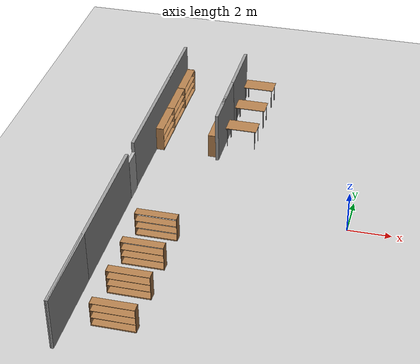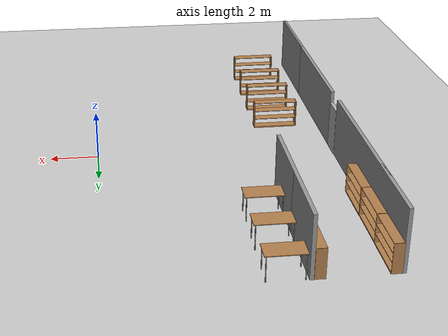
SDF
<sdf version="1.7">
 <world name="default">
  <model name="ground_plane">
   <static>1</static>
   <link name="link">
    <collision name="collision">
     <geometry><plane><normal>0 0 1</normal><size>100 100</size></plane></geometry>
     <surface>
      <contact><collide_bitmask>65535</collide_bitmask></contact>
      <friction><ode><mu>100</mu><mu2>50</mu2></ode></friction>
     </surface>
    </collision>
    <visual name="visual">
     <cast_shadows>0</cast_shadows>
     <geometry><plane><normal>0 0 1</normal><size>100 100</size></plane></geometry>
     <material>
      <script><uri>file://media/materials/scripts/gazebo.material</uri><name>Gazebo/Grey</name></script>
     </material>
    </visual>
   </link>
  </model>
  <model name="wall_10m">
   <pose>-10.0955 -5.01191 0 0 0 -1.57203</pose>
   <link name="Wall_0">
    <collision name="Wall_0_Collision">
     <geometry><box><size>4.16 0.15 2.5</size></box></geometry>
     <pose>0 0 1.25 0 -0 0</pose>
    </collision>
    <visual name="Wall_0_Visual">
     <pose>0 0 1.25 0 -0 0</pose>
     <geometry><box><size>4.16 0.15 2.5</size></box></geometry>
     <material>
      <script><uri>file://media/materials/scripts/gazebo.material</uri><name>Gazebo/Grey</name></script>
      <ambient>1 1 1 1</ambient>
     </material>
     <meta><layer>0</layer></meta>
    </visual>
    <pose>2.92 0 0 0 -0 0</pose>
   </link>
   <link name="Wall_1">
    <collision name="Wall_1_Collision">
     <geometry><box><size>10 0.15 2.5</size></box></geometry>
     <pose>0 0 1.25 0 -0 0</pose>
    </collision>
    <visual name="Wall_1_Visual">
     <pose>0 0 1.25 0 -0 0</pose>
     <geometry><box><size>10 0.15 2.5</size></box></geometry>
     <material>
      <script><uri>file://media/materials/scripts/gazebo.material</uri><name>Gazebo/Grey</name></script>
      <ambient>1 1 1 1</ambient>
     </material>
     <meta><layer>0</layer></meta>
    </visual>
    <pose>0 0 0 0 -0 3.14159</pose>
   </link>
   <static>1</static>
  </model>
  <model name="door_1">
   <link name="link_0">
    <visual name="visual">
     <pose>0 0 1 0 -0 0</pose>
     <geometry><box><size>0.9 0.15 2</size></box></geometry>
     <material>
      <script>
       <uri>model://door/materials/scripts</uri>
       <uri>model://door/materials/textures</uri>
       <name>door</name>
      </script>
     </material>
    </visual>
    <collision name="collision">
     <pose>0 0 1 0 -0 0</pose>
     <geometry><box><size>0.9 0.15 2</size></box></geometry>
    </collision>
   </link>
   <static>1</static>
   <pose>-10.0824 0.449021 0 0 -0 1.568</pose>
  </model>
  <model name="wall_9m">
   <pose>-10.0971 5.40979 0 0 -0 1.56823</pose>
   <link name="Wall_0">
    <collision name="Wall_0_Collision">
     <geometry><box><size>3.16 0.15 2.5</size></box></geometry>
     <pose>0 0 1.25 0 -0 0</pose>
    </collision>
    <visual name="Wall_0_Visual">
     <pose>0 0 1.25 0 -0 0</pose>
     <geometry><box><size>3.16 0.15 2.5</size></box></geometry>
     <material>
      <script><uri>file://media/materials/scripts/gazebo.material</uri><name>Gazebo/Grey</name></script>
      <ambient>1 1 1 1</ambient>
     </material>
     <meta><layer>0</layer></meta>
    </visual>
    <pose>2.92 0 0 0 -0 0</pose>
   </link>
   <link name="Wall_1">
    <collision name="Wall_1_Collision">
     <geometry><box><size>9 0.15 2.5</size></box></geometry>
     <pose>0 0 1.25 0 -0 0</pose>
    </collision>
    <visual name="Wall_1_Visual">
     <pose>0 0 1.25 0 -0 0</pose>
     <geometry><box><size>9 0.15 2.5</size></box></geometry>
     <material>
      <script><uri>file://media/materials/scripts/gazebo.material</uri><name>Gazebo/Grey</name></script>
      <ambient>1 1 1 1</ambient>
     </material>
     <meta><layer>0</layer></meta>
    </visual>
    <pose>0 0 0 0 -0 3.14159</pose>
   </link>
   <static>1</static>
  </model>
  <model name="bookshelf_twosided">
   <static>1</static>
   <link name="link">
    <inertial><mass>1</mass></inertial>
    <collision name="left_side">
     <pose>0.95 -0.195 0.6 0 -0 0</pose>
     <geometry><box><size>0.02 0.4 1.2</size></box></geometry>
    </collision>
    <visual name="left_side">
     <pose>0.95 -0.195 0.6 0 -0 0</pose>
     <geometry><box><size>0.02 0.4 1.2</size></box></geometry>
     <material>
      <script><uri>file://media/materials/scripts/gazebo.material</uri><name>Gazebo/Wood</name></script>
     </material>
    </visual>
    <collision name="right_side">
     <pose>-0.95 -0.195 0.6 0 -0 0</pose>
     <geometry><box><size>0.02 0.4 1.2</size></box></geometry>
    </collision>
    <visual name="right_side">
     <pose>-0.95 -0.195 0.6 0 -0 0</pose>
     <geometry><box><size>0.02 0.4 1.2</size></box></geometry>
     <material>
      <script><uri>file://media/materials/scripts/gazebo.material</uri><name>Gazebo/Wood</name></script>
     </material>
    </visual>
    <collision name="bottom">
     <pose>0 -0.195 0.03 0 -0 0</pose>
     <geometry><box><size>1.88 0.4 0.06</size></box></geometry>
    </collision>
    <visual name="bottom">
     <pose>0 -0.195 0.03 0 -0 0</pose>
     <geometry><box><size>1.88 0.4 0.06</size></box></geometry>
     <material>
      <script><uri>file://media/materials/scripts/gazebo.material</uri><name>Gazebo/Wood</name></script>
     </material>
    </visual>
    <collision name="top">
     <pose>0 -0.195 1.19 0 -0 0</pose>
     <geometry><box><size>1.88 0.4 0.02</size></box></geometry>
    </collision>
    <visual name="top">
     <pose>0 -0.195 1.19 0 -0 0</pose>
     <geometry><box><size>1.88 0.4 0.02</size></box></geometry>
     <material>
      <script><uri>file://media/materials/scripts/gazebo.material</uri><name>Gazebo/Wood</name></script>
     </material>
    </visual>
    <collision name="low_shelf">
     <pose>0 -0.195 0.43 0 -0 0</pose>
     <geometry><box><size>1.88 0.4 0.02</size></box></geometry>
    </collision>
    <visual name="low_shelf">
     <pose>0 -0.195 0.43 0 -0 0</pose>
     <geometry><box><size>1.88 0.4 0.02</size></box></geometry>
     <material>
      <script><uri>file://media/materials/scripts/gazebo.material</uri><name>Gazebo/Wood</name></script>
     </material>
    </visual>
    <collision name="high_shelf">
     <pose>0 -0.195 0.8 0 -0 0</pose>
     <geometry><box><size>1.88 0.4 0.02</size></box></geometry>
    </collision>
    <visual name="high_shelf">
     <pose>0 -0.195 0.8 0 -0 0</pose>
     <geometry><box><size>1.88 0.4 0.02</size></box></geometry>
     <material>
      <script><uri>file://media/materials/scripts/gazebo.material</uri><name>Gazebo/Wood</name></script>
     </material>
    </visual>
   </link>
   <pose>-8.08838 -8.03725 0 0 -0 0</pose>
  </model>
  <model name="bookshelf_twosided_2">
   <static>1</static>
   <link name="link">
    <inertial><mass>1</mass></inertial>
    <collision name="left_side">
     <pose>0.95 -0.195 0.6 0 -0 0</pose>
     <geometry><box><size>0.02 0.4 1.2</size></box></geometry>
    </collision>
    <visual name="left_side">
     <pose>0.95 -0.195 0.6 0 -0 0</pose>
     <geometry><box><size>0.02 0.4 1.2</size></box></geometry>
     <material>
      <script><uri>file://media/materials/scripts/gazebo.material</uri><name>Gazebo/Wood</name></script>
     </material>
    </visual>
    <collision name="right_side">
     <pose>-0.95 -0.195 0.6 0 -0 0</pose>
     <geometry><box><size>0.02 0.4 1.2</size></box></geometry>
    </collision>
    <visual name="right_side">
     <pose>-0.95 -0.195 0.6 0 -0 0</pose>
     <geometry><box><size>0.02 0.4 1.2</size></box></geometry>
     <material>
      <script><uri>file://media/materials/scripts/gazebo.material</uri><name>Gazebo/Wood</name></script>
     </material>
    </visual>
    <collision name="bottom">
     <pose>0 -0.195 0.03 0 -0 0</pose>
     <geometry><box><size>1.88 0.4 0.06</size></box></geometry>
    </collision>
    <visual name="bottom">
     <pose>0 -0.195 0.03 0 -0 0</pose>
     <geometry><box><size>1.88 0.4 0.06</size></box></geometry>
     <material>
      <script><uri>file://media/materials/scripts/gazebo.material</uri><name>Gazebo/Wood</name></script>
     </material>
    </visual>
    <collision name="top">
     <pose>0 -0.195 1.19 0 -0 0</pose>
     <geometry><box><size>1.88 0.4 0.02</size></box></geometry>
    </collision>
    <visual name="top">
     <pose>0 -0.195 1.19 0 -0 0</pose>
     <geometry><box><size>1.88 0.4 0.02</size></box></geometry>
     <material>
      <script><uri>file://media/materials/scripts/gazebo.material</uri><name>Gazebo/Wood</name></script>
     </material>
    </visual>
    <collision name="low_shelf">
     <pose>0 -0.195 0.43 0 -0 0</pose>
     <geometry><box><size>1.88 0.4 0.02</size></box></geometry>
    </collision>
    <visual name="low_shelf">
     <pose>0 -0.195 0.43 0 -0 0</pose>
     <geometry><box><size>1.88 0.4 0.02</size></box></geometry>
     <material>
      <script><uri>file://media/materials/scripts/gazebo.material</uri><name>Gazebo/Wood</name></script>
     </material>
    </visual>
    <collision name="high_shelf">
     <pose>0 -0.195 0.8 0 -0 0</pose>
     <geometry><box><size>1.88 0.4 0.02</size></box></geometry>
    </collision>
    <visual name="high_shelf">
     <pose>0 -0.195 0.8 0 -0 0</pose>
     <geometry><box><size>1.88 0.4 0.02</size></box></geometry>
     <material>
      <script><uri>file://media/materials/scripts/gazebo.material</uri><name>Gazebo/Wood</name></script>
     </material>
    </visual>
   </link>
   <pose>-8.0795 -6.02858 0 0 -0 0</pose>
  </model>
  <model name="bookshelf_twosided_5">
   <static>1</static>
   <link name="link">
    <inertial><mass>1</mass></inertial>
    <collision name="left_side">
     <pose>0.95 -0.195 0.6 0 -0 0</pose>
     <geometry><box><size>0.02 0.4 1.2</size></box></geometry>
    </collision>
    <visual name="left_side">
     <pose>0.95 -0.195 0.6 0 -0 0</pose>
     <geometry><box><size>0.02 0.4 1.2</size></box></geometry>
     <material>
      <script><uri>file://media/materials/scripts/gazebo.material</uri><name>Gazebo/Wood</name></script>
     </material>
    </visual>
    <collision name="right_side">
     <pose>-0.95 -0.195 0.6 0 -0 0</pose>
     <geometry><box><size>0.02 0.4 1.2</size></box></geometry>
    </collision>
    <visual name="right_side">
     <pose>-0.95 -0.195 0.6 0 -0 0</pose>
     <geometry><box><size>0.02 0.4 1.2</size></box></geometry>
     <material>
      <script><uri>file://media/materials/scripts/gazebo.material</uri><name>Gazebo/Wood</name></script>
     </material>
    </visual>
    <collision name="bottom">
     <pose>0 -0.195 0.03 0 -0 0</pose>
     <geometry><box><size>1.88 0.4 0.06</size></box></geometry>
    </collision>
    <visual name="bottom">
     <pose>0 -0.195 0.03 0 -0 0</pose>
     <geometry><box><size>1.88 0.4 0.06</size></box></geometry>
     <material>
      <script><uri>file://media/materials/scripts/gazebo.material</uri><name>Gazebo/Wood</name></script>
     </material>
    </visual>
    <collision name="top">
     <pose>0 -0.195 1.19 0 -0 0</pose>
     <geometry><box><size>1.88 0.4 0.02</size></box></geometry>
    </collision>
    <visual name="top">
     <pose>0 -0.195 1.19 0 -0 0</pose>
     <geometry><box><size>1.88 0.4 0.02</size></box></geometry>
     <material>
      <script><uri>file://media/materials/scripts/gazebo.material</uri><name>Gazebo/Wood</name></script>
     </material>
    </visual>
    <collision name="low_shelf">
     <pose>0 -0.195 0.43 0 -0 0</pose>
     <geometry><box><size>1.88 0.4 0.02</size></box></geometry>
    </collision>
    <visual name="low_shelf">
     <pose>0 -0.195 0.43 0 -0 0</pose>
     <geometry><box><size>1.88 0.4 0.02</size></box></geometry>
     <material>
      <script><uri>file://media/materials/scripts/gazebo.material</uri><name>Gazebo/Wood</name></script>
     </material>
    </visual>
    <collision name="high_shelf">
     <pose>0 -0.195 0.8 0 -0 0</pose>
     <geometry><box><size>1.88 0.4 0.02</size></box></geometry>
    </collision>
    <visual name="high_shelf">
     <pose>0 -0.195 0.8 0 -0 0</pose>
     <geometry><box><size>1.88 0.4 0.02</size></box></geometry>
     <material>
      <script><uri>file://media/materials/scripts/gazebo.material</uri><name>Gazebo/Wood</name></script>
     </material>
    </visual>
   </link>
   <pose>-8.08114 -4.10736 0 0 -0 0</pose>
  </model>
  <model name="bookshelf_twosided_8">
   <static>1</static>
   <link name="link">
    <inertial><mass>1</mass></inertial>
    <collision name="left_side">
     <pose>0.95 -0.195 0.6 0 -0 0</pose>
     <geometry><box><size>0.02 0.4 1.2</size></box></geometry>
    </collision>
    <visual name="left_side">
     <pose>0.95 -0.195 0.6 0 -0 0</pose>
     <geometry><box><size>0.02 0.4 1.2</size></box></geometry>
     <material>
      <script><uri>file://media/materials/scripts/gazebo.material</uri><name>Gazebo/Wood</name></script>
     </material>
    </visual>
    <collision name="right_side">
     <pose>-0.95 -0.195 0.6 0 -0 0</pose>
     <geometry><box><size>0.02 0.4 1.2</size></box></geometry>
    </collision>
    <visual name="right_side">
     <pose>-0.95 -0.195 0.6 0 -0 0</pose>
     <geometry><box><size>0.02 0.4 1.2</size></box></geometry>
     <material>
      <script><uri>file://media/materials/scripts/gazebo.material</uri><name>Gazebo/Wood</name></script>
     </material>
    </visual>
    <collision name="bottom">
     <pose>0 -0.195 0.03 0 -0 0</pose>
     <geometry><box><size>1.88 0.4 0.06</size></box></geometry>
    </collision>
    <visual name="bottom">
     <pose>0 -0.195 0.03 0 -0 0</pose>
     <geometry><box><size>1.88 0.4 0.06</size></box></geometry>
     <material>
      <script><uri>file://media/materials/scripts/gazebo.material</uri><name>Gazebo/Wood</name></script>
     </material>
    </visual>
    <collision name="top">
     <pose>0 -0.195 1.19 0 -0 0</pose>
     <geometry><box><size>1.88 0.4 0.02</size></box></geometry>
    </collision>
    <visual name="top">
     <pose>0 -0.195 1.19 0 -0 0</pose>
     <geometry><box><size>1.88 0.4 0.02</size></box></geometry>
     <material>
      <script><uri>file://media/materials/scripts/gazebo.material</uri><name>Gazebo/Wood</name></script>
     </material>
    </visual>
    <collision name="low_shelf">
     <pose>0 -0.195 0.43 0 -0 0</pose>
     <geometry><box><size>1.88 0.4 0.02</size></box></geometry>
    </collision>
    <visual name="low_shelf">
     <pose>0 -0.195 0.43 0 -0 0</pose>
     <geometry><box><size>1.88 0.4 0.02</size></box></geometry>
     <material>
      <script><uri>file://media/materials/scripts/gazebo.material</uri><name>Gazebo/Wood</name></script>
     </material>
    </visual>
    <collision name="high_shelf">
     <pose>0 -0.195 0.8 0 -0 0</pose>
     <geometry><box><size>1.88 0.4 0.02</size></box></geometry>
    </collision>
    <visual name="high_shelf">
     <pose>0 -0.195 0.8 0 -0 0</pose>
     <geometry><box><size>1.88 0.4 0.02</size></box></geometry>
     <material>
      <script><uri>file://media/materials/scripts/gazebo.material</uri><name>Gazebo/Wood</name></script>
     </material>
    </visual>
   </link>
   <pose>-8.07735 -2.09987 0 0 -0 0</pose>
  </model>
  <model name="bookshelf_onesided">
   <static>1</static>
   <link name="link">
    <inertial><mass>1</mass></inertial>
    <collision name="back">
     <pose>0 0.005 0.6 0 -0 0</pose>
     <geometry><box><size>1.9 0.01 1.2</size></box></geometry>
    </collision>
    <visual name="back">
     <pose>0 0.005 0.6 0 -0 0</pose>
     <geometry><box><size>1.9 0.01 1.2</size></box></geometry>
     <material>
      <script><uri>file://media/materials/scripts/gazebo.material</uri><name>Gazebo/Wood</name></script>
     </material>
    </visual>
    <collision name="left_side">
     <pose>0.95 -0.195 0.6 0 -0 0</pose>
     <geometry><box><size>0.02 0.4 1.2</size></box></geometry>
    </collision>
    <visual name="left_side">
     <pose>0.95 -0.195 0.6 0 -0 0</pose>
     <geometry><box><size>0.02 0.4 1.2</size></box></geometry>
     <material>
      <script><uri>file://media/materials/scripts/gazebo.material</uri><name>Gazebo/Wood</name></script>
     </material>
    </visual>
    <collision name="right_side">
     <pose>-0.95 -0.195 0.6 0 -0 0</pose>
     <geometry><box><size>0.02 0.4 1.2</size></box></geometry>
    </collision>
    <visual name="right_side">
     <pose>-0.95 -0.195 0.6 0 -0 0</pose>
     <geometry><box><size>0.02 0.4 1.2</size></box></geometry>
     <material>
      <script><uri>file://media/materials/scripts/gazebo.material</uri><name>Gazebo/Wood</name></script>
     </material>
    </visual>
    <collision name="bottom">
     <pose>0 -0.195 0.03 0 -0 0</pose>
     <geometry><box><size>1.88 0.4 0.06</size></box></geometry>
    </collision>
    <visual name="bottom">
     <pose>0 -0.195 0.03 0 -0 0</pose>
     <geometry><box><size>1.88 0.4 0.06</size></box></geometry>
     <material>
      <script><uri>file://media/materials/scripts/gazebo.material</uri><name>Gazebo/Wood</name></script>
     </material>
    </visual>
    <collision name="top">
     <pose>0 -0.195 1.19 0 -0 0</pose>
     <geometry><box><size>1.88 0.4 0.02</size></box></geometry>
    </collision>
    <visual name="top">
     <pose>0 -0.195 1.19 0 -0 0</pose>
     <geometry><box><size>1.88 0.4 0.02</size></box></geometry>
     <material>
      <script><uri>file://media/materials/scripts/gazebo.material</uri><name>Gazebo/Wood</name></script>
     </material>
    </visual>
    <collision name="low_shelf">
     <pose>0 -0.195 0.43 0 -0 0</pose>
     <geometry><box><size>1.88 0.4 0.02</size></box></geometry>
    </collision>
    <visual name="low_shelf">
     <pose>0 -0.195 0.43 0 -0 0</pose>
     <geometry><box><size>1.88 0.4 0.02</size></box></geometry>
     <material>
      <script><uri>file://media/materials/scripts/gazebo.material</uri><name>Gazebo/Wood</name></script>
     </material>
    </visual>
    <collision name="high_shelf">
     <pose>0 -0.195 0.8 0 -0 0</pose>
     <geometry><box><size>1.88 0.4 0.02</size></box></geometry>
    </collision>
    <visual name="high_shelf">
     <pose>0 -0.195 0.8 0 -0 0</pose>
     <geometry><box><size>1.88 0.4 0.02</size></box></geometry>
     <material>
      <script><uri>file://media/materials/scripts/gazebo.material</uri><name>Gazebo/Wood</name></script>
     </material>
    </visual>
   </link>
   <pose>-10.0393 5.11649 0 0 -0 1.56693</pose>
  </model>
  <model name="bookshelf_onesided_clone">
   <static>1</static>
   <link name="link">
    <inertial><mass>1</mass></inertial>
    <collision name="back">
     <pose>0 0.005 0.6 0 -0 0</pose>
     <geometry><box><size>1.9 0.01 1.2</size></box></geometry>
    </collision>
    <visual name="back">
     <pose>0 0.005 0.6 0 -0 0</pose>
     <geometry><box><size>1.9 0.01 1.2</size></box></geometry>
     <material>
      <script><uri>file://media/materials/scripts/gazebo.material</uri><name>Gazebo/Wood</name></script>
     </material>
    </visual>
    <collision name="left_side">
     <pose>0.95 -0.195 0.6 0 -0 0</pose>
     <geometry><box><size>0.02 0.4 1.2</size></box></geometry>
    </collision>
    <visual name="left_side">
     <pose>0.95 -0.195 0.6 0 -0 0</pose>
     <geometry><box><size>0.02 0.4 1.2</size></box></geometry>
     <material>
      <script><uri>file://media/materials/scripts/gazebo.material</uri><name>Gazebo/Wood</name></script>
     </material>
    </visual>
    <collision name="right_side">
     <pose>-0.95 -0.195 0.6 0 -0 0</pose>
     <geometry><box><size>0.02 0.4 1.2</size></box></geometry>
    </collision>
    <visual name="right_side">
     <pose>-0.95 -0.195 0.6 0 -0 0</pose>
     <geometry><box><size>0.02 0.4 1.2</size></box></geometry>
     <material>
      <script><uri>file://media/materials/scripts/gazebo.material</uri><name>Gazebo/Wood</name></script>
     </material>
    </visual>
    <collision name="bottom">
     <pose>0 -0.195 0.03 0 -0 0</pose>
     <geometry><box><size>1.88 0.4 0.06</size></box></geometry>
    </collision>
    <visual name="bottom">
     <pose>0 -0.195 0.03 0 -0 0</pose>
     <geometry><box><size>1.88 0.4 0.06</size></box></geometry>
     <material>
      <script><uri>file://media/materials/scripts/gazebo.material</uri><name>Gazebo/Wood</name></script>
     </material>
    </visual>
    <collision name="top">
     <pose>0 -0.195 1.19 0 -0 0</pose>
     <geometry><box><size>1.88 0.4 0.02</size></box></geometry>
    </collision>
    <visual name="top">
     <pose>0 -0.195 1.19 0 -0 0</pose>
     <geometry><box><size>1.88 0.4 0.02</size></box></geometry>
     <material>
      <script><uri>file://media/materials/scripts/gazebo.material</uri><name>Gazebo/Wood</name></script>
     </material>
    </visual>
    <collision name="low_shelf">
     <pose>0 -0.195 0.43 0 -0 0</pose>
     <geometry><box><size>1.88 0.4 0.02</size></box></geometry>
    </collision>
    <visual name="low_shelf">
     <pose>0 -0.195 0.43 0 -0 0</pose>
     <geometry><box><size>1.88 0.4 0.02</size></box></geometry>
     <material>
      <script><uri>file://media/materials/scripts/gazebo.material</uri><name>Gazebo/Wood</name></script>
     </material>
    </visual>
    <collision name="high_shelf">
     <pose>0 -0.195 0.8 0 -0 0</pose>
     <geometry><box><size>1.88 0.4 0.02</size></box></geometry>
    </collision>
    <visual name="high_shelf">
     <pose>0 -0.195 0.8 0 -0 0</pose>
     <geometry><box><size>1.88 0.4 0.02</size></box></geometry>
     <material>
      <script><uri>file://media/materials/scripts/gazebo.material</uri><name>Gazebo/Wood</name></script>
     </material>
    </visual>
   </link>
   <pose>-10.0416 7.02813 0 0 -0 1.56693</pose>
  </model>
  <model name="bookshelf_onesided_clone_0">
   <static>1</static>
   <link name="link">
    <inertial><mass>1</mass></inertial>
    <collision name="back">
     <pose>0 0.005 0.6 0 -0 0</pose>
     <geometry><box><size>1.9 0.01 1.2</size></box></geometry>
    </collision>
    <visual name="back">
     <pose>0 0.005 0.6 0 -0 0</pose>
     <geometry><box><size>1.9 0.01 1.2</size></box></geometry>
     <material>
      <script><uri>file://media/materials/scripts/gazebo.material</uri><name>Gazebo/Wood</name></script>
     </material>
    </visual>
    <collision name="left_side">
     <pose>0.95 -0.195 0.6 0 -0 0</pose>
     <geometry><box><size>0.02 0.4 1.2</size></box></geometry>
    </collision>
    <visual name="left_side">
     <pose>0.95 -0.195 0.6 0 -0 0</pose>
     <geometry><box><size>0.02 0.4 1.2</size></box></geometry>
     <material>
      <script><uri>file://media/materials/scripts/gazebo.material</uri><name>Gazebo/Wood</name></script>
     </material>
    </visual>
    <collision name="right_side">
     <pose>-0.95 -0.195 0.6 0 -0 0</pose>
     <geometry><box><size>0.02 0.4 1.2</size></box></geometry>
    </collision>
    <visual name="right_side">
     <pose>-0.95 -0.195 0.6 0 -0 0</pose>
     <geometry><box><size>0.02 0.4 1.2</size></box></geometry>
     <material>
      <script><uri>file://media/materials/scripts/gazebo.material</uri><name>Gazebo/Wood</name></script>
     </material>
    </visual>
    <collision name="bottom">
     <pose>0 -0.195 0.03 0 -0 0</pose>
     <geometry><box><size>1.88 0.4 0.06</size></box></geometry>
    </collision>
    <visual name="bottom">
     <pose>0 -0.195 0.03 0 -0 0</pose>
     <geometry><box><size>1.88 0.4 0.06</size></box></geometry>
     <material>
      <script><uri>file://media/materials/scripts/gazebo.material</uri><name>Gazebo/Wood</name></script>
     </material>
    </visual>
    <collision name="top">
     <pose>0 -0.195 1.19 0 -0 0</pose>
     <geometry><box><size>1.88 0.4 0.02</size></box></geometry>
    </collision>
    <visual name="top">
     <pose>0 -0.195 1.19 0 -0 0</pose>
     <geometry><box><size>1.88 0.4 0.02</size></box></geometry>
     <material>
      <script><uri>file://media/materials/scripts/gazebo.material</uri><name>Gazebo/Wood</name></script>
     </material>
    </visual>
    <collision name="low_shelf">
     <pose>0 -0.195 0.43 0 -0 0</pose>
     <geometry><box><size>1.88 0.4 0.02</size></box></geometry>
    </collision>
    <visual name="low_shelf">
     <pose>0 -0.195 0.43 0 -0 0</pose>
     <geometry><box><size>1.88 0.4 0.02</size></box></geometry>
     <material>
      <script><uri>file://media/materials/scripts/gazebo.material</uri><name>Gazebo/Wood</name></script>
     </material>
    </visual>
    <collision name="high_shelf">
     <pose>0 -0.195 0.8 0 -0 0</pose>
     <geometry><box><size>1.88 0.4 0.02</size></box></geometry>
    </collision>
    <visual name="high_shelf">
     <pose>0 -0.195 0.8 0 -0 0</pose>
     <geometry><box><size>1.88 0.4 0.02</size></box></geometry>
     <material>
      <script><uri>file://media/materials/scripts/gazebo.material</uri><name>Gazebo/Wood</name></script>
     </material>
    </visual>
   </link>
   <pose>-10.0261 8.9522 0 0 -0 1.56693</pose>
  </model>
  <model name="bookshelf_onesided_clone_1">
   <static>1</static>
   <link name="link">
    <inertial><mass>1</mass></inertial>
    <collision name="back">
     <pose>0 0.005 0.6 0 -0 0</pose>
     <geometry><box><size>1.9 0.01 1.2</size></box></geometry>
    </collision>
    <visual name="back">
     <pose>0 0.005 0.6 0 -0 0</pose>
     <geometry><box><size>1.9 0.01 1.2</size></box></geometry>
     <material>
      <script><uri>file://media/materials/scripts/gazebo.material</uri><name>Gazebo/Wood</name></script>
     </material>
    </visual>
    <collision name="left_side">
     <pose>0.95 -0.195 0.6 0 -0 0</pose>
     <geometry><box><size>0.02 0.4 1.2</size></box></geometry>
    </collision>
    <visual name="left_side">
     <pose>0.95 -0.195 0.6 0 -0 0</pose>
     <geometry><box><size>0.02 0.4 1.2</size></box></geometry>
     <material>
      <script><uri>file://media/materials/scripts/gazebo.material</uri><name>Gazebo/Wood</name></script>
     </material>
    </visual>
    <collision name="right_side">
     <pose>-0.95 -0.195 0.6 0 -0 0</pose>
     <geometry><box><size>0.02 0.4 1.2</size></box></geometry>
    </collision>
    <visual name="right_side">
     <pose>-0.95 -0.195 0.6 0 -0 0</pose>
     <geometry><box><size>0.02 0.4 1.2</size></box></geometry>
     <material>
      <script><uri>file://media/materials/scripts/gazebo.material</uri><name>Gazebo/Wood</name></script>
     </material>
    </visual>
    <collision name="bottom">
     <pose>0 -0.195 0.03 0 -0 0</pose>
     <geometry><box><size>1.88 0.4 0.06</size></box></geometry>
    </collision>
    <visual name="bottom">
     <pose>0 -0.195 0.03 0 -0 0</pose>
     <geometry><box><size>1.88 0.4 0.06</size></box></geometry>
     <material>
      <script><uri>file://media/materials/scripts/gazebo.material</uri><name>Gazebo/Wood</name></script>
     </material>
    </visual>
    <collision name="top">
     <pose>0 -0.195 1.19 0 -0 0</pose>
     <geometry><box><size>1.88 0.4 0.02</size></box></geometry>
    </collision>
    <visual name="top">
     <pose>0 -0.195 1.19 0 -0 0</pose>
     <geometry><box><size>1.88 0.4 0.02</size></box></geometry>
     <material>
      <script><uri>file://media/materials/scripts/gazebo.material</uri><name>Gazebo/Wood</name></script>
     </material>
    </visual>
    <collision name="low_shelf">
     <pose>0 -0.195 0.43 0 -0 0</pose>
     <geometry><box><size>1.88 0.4 0.02</size></box></geometry>
    </collision>
    <visual name="low_shelf">
     <pose>0 -0.195 0.43 0 -0 0</pose>
     <geometry><box><size>1.88 0.4 0.02</size></box></geometry>
     <material>
      <script><uri>file://media/materials/scripts/gazebo.material</uri><name>Gazebo/Wood</name></script>
     </material>
    </visual>
    <collision name="high_shelf">
     <pose>0 -0.195 0.8 0 -0 0</pose>
     <geometry><box><size>1.88 0.4 0.02</size></box></geometry>
    </collision>
    <visual name="high_shelf">
     <pose>0 -0.195 0.8 0 -0 0</pose>
     <geometry><box><size>1.88 0.4 0.02</size></box></geometry>
     <material>
      <script><uri>file://media/materials/scripts/gazebo.material</uri><name>Gazebo/Wood</name></script>
     </material>
    </visual>
   </link>
   <pose>-7.01522 8.94822 0 0 0 -1.57395</pose>
  </model>
  <model name="bookshelf_onesided_clone_1_clone">
   <static>1</static>
   <link name="link">
    <inertial><mass>1</mass></inertial>
    <collision name="back">
     <pose>0 0.005 0.6 0 -0 0</pose>
     <geometry><box><size>1.9 0.01 1.2</size></box></geometry>
    </collision>
    <visual name="back">
     <pose>0 0.005 0.6 0 -0 0</pose>
     <geometry><box><size>1.9 0.01 1.2</size></box></geometry>
     <material>
      <script><uri>file://media/materials/scripts/gazebo.material</uri><name>Gazebo/Wood</name></script>
     </material>
    </visual>
    <collision name="left_side">
     <pose>0.95 -0.195 0.6 0 -0 0</pose>
     <geometry><box><size>0.02 0.4 1.2</size></box></geometry>
    </collision>
    <visual name="left_side">
     <pose>0.95 -0.195 0.6 0 -0 0</pose>
     <geometry><box><size>0.02 0.4 1.2</size></box></geometry>
     <material>
      <script><uri>file://media/materials/scripts/gazebo.material</uri><name>Gazebo/Wood</name></script>
     </material>
    </visual>
    <collision name="right_side">
     <pose>-0.95 -0.195 0.6 0 -0 0</pose>
     <geometry><box><size>0.02 0.4 1.2</size></box></geometry>
    </collision>
    <visual name="right_side">
     <pose>-0.95 -0.195 0.6 0 -0 0</pose>
     <geometry><box><size>0.02 0.4 1.2</size></box></geometry>
     <material>
      <script><uri>file://media/materials/scripts/gazebo.material</uri><name>Gazebo/Wood</name></script>
     </material>
    </visual>
    <collision name="bottom">
     <pose>0 -0.195 0.03 0 -0 0</pose>
     <geometry><box><size>1.88 0.4 0.06</size></box></geometry>
    </collision>
    <visual name="bottom">
     <pose>0 -0.195 0.03 0 -0 0</pose>
     <geometry><box><size>1.88 0.4 0.06</size></box></geometry>
     <material>
      <script><uri>file://media/materials/scripts/gazebo.material</uri><name>Gazebo/Wood</name></script>
     </material>
    </visual>
    <collision name="top">
     <pose>0 -0.195 1.19 0 -0 0</pose>
     <geometry><box><size>1.88 0.4 0.02</size></box></geometry>
    </collision>
    <visual name="top">
     <pose>0 -0.195 1.19 0 -0 0</pose>
     <geometry><box><size>1.88 0.4 0.02</size></box></geometry>
     <material>
      <script><uri>file://media/materials/scripts/gazebo.material</uri><name>Gazebo/Wood</name></script>
     </material>
    </visual>
    <collision name="low_shelf">
     <pose>0 -0.195 0.43 0 -0 0</pose>
     <geometry><box><size>1.88 0.4 0.02</size></box></geometry>
    </collision>
    <visual name="low_shelf">
     <pose>0 -0.195 0.43 0 -0 0</pose>
     <geometry><box><size>1.88 0.4 0.02</size></box></geometry>
     <material>
      <script><uri>file://media/materials/scripts/gazebo.material</uri><name>Gazebo/Wood</name></script>
     </material>
    </visual>
    <collision name="high_shelf">
     <pose>0 -0.195 0.8 0 -0 0</pose>
     <geometry><box><size>1.88 0.4 0.02</size></box></geometry>
    </collision>
    <visual name="high_shelf">
     <pose>0 -0.195 0.8 0 -0 0</pose>
     <geometry><box><size>1.88 0.4 0.02</size></box></geometry>
     <material>
      <script><uri>file://media/materials/scripts/gazebo.material</uri><name>Gazebo/Wood</name></script>
     </material>
    </visual>
   </link>
   <pose>-7.02673 7.02272 0 0 0 -1.57395</pose>
  </model>
  <model name="bookshelf_onesided_clone_1_clone_0">
   <static>1</static>
   <link name="link">
    <inertial><mass>1</mass></inertial>
    <collision name="back">
     <pose>0 0.005 0.6 0 -0 0</pose>
     <geometry><box><size>1.9 0.01 1.2</size></box></geometry>
    </collision>
    <visual name="back">
     <pose>0 0.005 0.6 0 -0 0</pose>
     <geometry><box><size>1.9 0.01 1.2</size></box></geometry>
     <material>
      <script><uri>file://media/materials/scripts/gazebo.material</uri><name>Gazebo/Wood</name></script>
     </material>
    </visual>
    <collision name="left_side">
     <pose>0.95 -0.195 0.6 0 -0 0</pose>
     <geometry><box><size>0.02 0.4 1.2</size></box></geometry>
    </collision>
    <visual name="left_side">
     <pose>0.95 -0.195 0.6 0 -0 0</pose>
     <geometry><box><size>0.02 0.4 1.2</size></box></geometry>
     <material>
      <script><uri>file://media/materials/scripts/gazebo.material</uri><name>Gazebo/Wood</name></script>
     </material>
    </visual>
    <collision name="right_side">
     <pose>-0.95 -0.195 0.6 0 -0 0</pose>
     <geometry><box><size>0.02 0.4 1.2</size></box></geometry>
    </collision>
    <visual name="right_side">
     <pose>-0.95 -0.195 0.6 0 -0 0</pose>
     <geometry><box><size>0.02 0.4 1.2</size></box></geometry>
     <material>
      <script><uri>file://media/materials/scripts/gazebo.material</uri><name>Gazebo/Wood</name></script>
     </material>
    </visual>
    <collision name="bottom">
     <pose>0 -0.195 0.03 0 -0 0</pose>
     <geometry><box><size>1.88 0.4 0.06</size></box></geometry>
    </collision>
    <visual name="bottom">
     <pose>0 -0.195 0.03 0 -0 0</pose>
     <geometry><box><size>1.88 0.4 0.06</size></box></geometry>
     <material>
      <script><uri>file://media/materials/scripts/gazebo.material</uri><name>Gazebo/Wood</name></script>
     </material>
    </visual>
    <collision name="top">
     <pose>0 -0.195 1.19 0 -0 0</pose>
     <geometry><box><size>1.88 0.4 0.02</size></box></geometry>
    </collision>
    <visual name="top">
     <pose>0 -0.195 1.19 0 -0 0</pose>
     <geometry><box><size>1.88 0.4 0.02</size></box></geometry>
     <material>
      <script><uri>file://media/materials/scripts/gazebo.material</uri><name>Gazebo/Wood</name></script>
     </material>
    </visual>
    <collision name="low_shelf">
     <pose>0 -0.195 0.43 0 -0 0</pose>
     <geometry><box><size>1.88 0.4 0.02</size></box></geometry>
    </collision>
    <visual name="low_shelf">
     <pose>0 -0.195 0.43 0 -0 0</pose>
     <geometry><box><size>1.88 0.4 0.02</size></box></geometry>
     <material>
      <script><uri>file://media/materials/scripts/gazebo.material</uri><name>Gazebo/Wood</name></script>
     </material>
    </visual>
    <collision name="high_shelf">
     <pose>0 -0.195 0.8 0 -0 0</pose>
     <geometry><box><size>1.88 0.4 0.02</size></box></geometry>
    </collision>
    <visual name="high_shelf">
     <pose>0 -0.195 0.8 0 -0 0</pose>
     <geometry><box><size>1.88 0.4 0.02</size></box></geometry>
     <material>
      <script><uri>file://media/materials/scripts/gazebo.material</uri><name>Gazebo/Wood</name></script>
     </material>
    </visual>
   </link>
   <pose>-7.02813 5.10058 0 0 0 -1.57395</pose>
  </model>
  <model name="wall_6m">
   <pose>-6.92835 6.92007 0 0 0 -1.57267</pose>
   <link name="Wall_0">
    <collision name="Wall_0_Collision">
     <geometry><box><size>3.16 0.15 2.5</size></box></geometry>
     <pose>0 0 1.25 0 -0 0</pose>
    </collision>
    <visual name="Wall_0_Visual">
     <pose>0 0 1.25 0 -0 0</pose>
     <geometry><box><size>3.16 0.15 2.5</size></box></geometry>
     <material>
      <script><uri>file://media/materials/scripts/gazebo.material</uri><name>Gazebo/Grey</name></script>
      <ambient>1 1 1 1</ambient>
     </material>
     <meta><layer>0</layer></meta>
    </visual>
    <pose>1.42 0 0 0 -0 0</pose>
   </link>
   <link name="Wall_1">
    <collision name="Wall_1_Collision">
     <geometry><box><size>6 0.15 2.5</size></box></geometry>
     <pose>0 0 1.25 0 -0 0</pose>
    </collision>
    <visual name="Wall_1_Visual">
     <pose>0 0 1.25 0 -0 0</pose>
     <geometry><box><size>6 0.15 2.5</size></box></geometry>
     <material>
      <script><uri>file://media/materials/scripts/gazebo.material</uri><name>Gazebo/Grey</name></script>
      <ambient>1 1 1 1</ambient>
     </material>
     <meta><layer>0</layer></meta>
    </visual>
    <pose>0 0 0 0 -0 3.14159</pose>
   </link>
   <static>1</static>
  </model>
  <model name="table">
   <static>1</static>
   <link name="link">
    <collision name="surface">
     <pose>0 0 1 0 -0 0</pose>
     <geometry><box><size>1.5 0.8 0.03</size></box></geometry>
     <surface><friction><ode><mu>0.6</mu><mu2>0.6</mu2></ode></friction></surface>
    </collision>
    <visual name="visual1">
     <pose>0 0 1 0 -0 0</pose>
     <geometry><box><size>1.5 0.8 0.03</size></box></geometry>
     <material>
      <script><uri>file://media/materials/scripts/gazebo.material</uri><name>Gazebo/Wood</name></script>
     </material>
    </visual>
    <collision name="front_left_leg">
     <pose>0.68 0.38 0.5 0 -0 0</pose>
     <geometry><cylinder><radius>0.02</radius><length>1</length></cylinder></geometry>
    </collision>
    <visual name="front_left_leg">
     <pose>0.68 0.38 0.5 0 -0 0</pose>
     <geometry><cylinder><radius>0.02</radius><length>1</length></cylinder></geometry>
     <material>
      <script><uri>file://media/materials/scripts/gazebo.material</uri><name>Gazebo/Grey</name></script>
     </material>
    </visual>
    <collision name="front_right_leg">
     <pose>0.68 -0.38 0.5 0 -0 0</pose>
     <geometry><cylinder><radius>0.02</radius><length>1</length></cylinder></geometry>
    </collision>
    <visual name="front_right_leg">
     <pose>0.68 -0.38 0.5 0 -0 0</pose>
     <geometry><cylinder><radius>0.02</radius><length>1</length></cylinder></geometry>
     <material>
      <script><uri>file://media/materials/scripts/gazebo.material</uri><name>Gazebo/Grey</name></script>
     </material>
    </visual>
    <collision name="back_right_leg">
     <pose>-0.68 -0.38 0.5 0 -0 0</pose>
     <geometry><cylinder><radius>0.02</radius><length>1</length></cylinder></geometry>
    </collision>
    <visual name="back_right_leg">
     <pose>-0.68 -0.38 0.5 0 -0 0</pose>
     <geometry><cylinder><radius>0.02</radius><length>1</length></cylinder></geometry>
     <material>
      <script><uri>file://media/materials/scripts/gazebo.material</uri><name>Gazebo/Grey</name></script>
     </material>
    </visual>
    <collision name="back_left_leg">
     <pose>-0.68 0.38 0.5 0 -0 0</pose>
     <geometry><cylinder><radius>0.02</radius><length>1</length></cylinder></geometry>
    </collision>
    <visual name="back_left_leg">
     <pose>-0.68 0.38 0.5 0 -0 0</pose>
     <geometry><cylinder><radius>0.02</radius><length>1</length></cylinder></geometry>
     <material>
      <script><uri>file://media/materials/scripts/gazebo.material</uri><name>Gazebo/Grey</name></script>
     </material>
    </visual>
   </link>
   <pose>-6.05452 9.49174 0 0 -0 3.13908</pose>
  </model>
  <model name="table_clone">
   <static>1</static>
   <link name="link">
    <collision name="surface">
     <pose>0 0 1 0 -0 0</pose>
     <geometry><box><size>1.5 0.8 0.03</size></box></geometry>
     <surface><friction><ode><mu>0.6</mu><mu2>0.6</mu2></ode></friction></surface>
    </collision>
    <visual name="visual1">
     <pose>0 0 1 0 -0 0</pose>
     <geometry><box><size>1.5 0.8 0.03</size></box></geometry>
     <material>
      <script><uri>file://media/materials/scripts/gazebo.material</uri><name>Gazebo/Wood</name></script>
     </material>
    </visual>
    <collision name="front_left_leg">
     <pose>0.68 0.38 0.5 0 -0 0</pose>
     <geometry><cylinder><radius>0.02</radius><length>1</length></cylinder></geometry>
    </collision>
    <visual name="front_left_leg">
     <pose>0.68 0.38 0.5 0 -0 0</pose>
     <geometry><cylinder><radius>0.02</radius><length>1</length></cylinder></geometry>
     <material>
      <script><uri>file://media/materials/scripts/gazebo.material</uri><name>Gazebo/Grey</name></script>
     </material>
    </visual>
    <collision name="front_right_leg">
     <pose>0.68 -0.38 0.5 0 -0 0</pose>
     <geometry><cylinder><radius>0.02</radius><length>1</length></cylinder></geometry>
    </collision>
    <visual name="front_right_leg">
     <pose>0.68 -0.38 0.5 0 -0 0</pose>
     <geometry><cylinder><radius>0.02</radius><length>1</length></cylinder></geometry>
     <material>
      <script><uri>file://media/materials/scripts/gazebo.material</uri><name>Gazebo/Grey</name></script>
     </material>
    </visual>
    <collision name="back_right_leg">
     <pose>-0.68 -0.38 0.5 0 -0 0</pose>
     <geometry><cylinder><radius>0.02</radius><length>1</length></cylinder></geometry>
    </collision>
    <visual name="back_right_leg">
     <pose>-0.68 -0.38 0.5 0 -0 0</pose>
     <geometry><cylinder><radius>0.02</radius><length>1</length></cylinder></geometry>
     <material>
      <script><uri>file://media/materials/scripts/gazebo.material</uri><name>Gazebo/Grey</name></script>
     </material>
    </visual>
    <collision name="back_left_leg">
     <pose>-0.68 0.38 0.5 0 -0 0</pose>
     <geometry><cylinder><radius>0.02</radius><length>1</length></cylinder></geometry>
    </collision>
    <visual name="back_left_leg">
     <pose>-0.68 0.38 0.5 0 -0 0</pose>
     <geometry><cylinder><radius>0.02</radius><length>1</length></cylinder></geometry>
     <material>
      <script><uri>file://media/materials/scripts/gazebo.material</uri><name>Gazebo/Grey</name></script>
     </material>
    </visual>
   </link>
   <pose>-6.05316 7.52878 0 0 -0 3.13908</pose>
  </model>
  <model name="table_clone_0">
   <static>1</static>
   <link name="link">
    <collision name="surface">
     <pose>0 0 1 0 -0 0</pose>
     <geometry><box><size>1.5 0.8 0.03</size></box></geometry>
     <surface><friction><ode><mu>0.6</mu><mu2>0.6</mu2></ode></friction></surface>
    </collision>
    <visual name="visual1">
     <pose>0 0 1 0 -0 0</pose>
     <geometry><box><size>1.5 0.8 0.03</size></box></geometry>
     <material>
      <script><uri>file://media/materials/scripts/gazebo.material</uri><name>Gazebo/Wood</name></script>
     </material>
    </visual>
    <collision name="front_left_leg">
     <pose>0.68 0.38 0.5 0 -0 0</pose>
     <geometry><cylinder><radius>0.02</radius><length>1</length></cylinder></geometry>
    </collision>
    <visual name="front_left_leg">
     <pose>0.68 0.38 0.5 0 -0 0</pose>
     <geometry><cylinder><radius>0.02</radius><length>1</length></cylinder></geometry>
     <material>
      <script><uri>file://media/materials/scripts/gazebo.material</uri><name>Gazebo/Grey</name></script>
     </material>
    </visual>
    <collision name="front_right_leg">
     <pose>0.68 -0.38 0.5 0 -0 0</pose>
     <geometry><cylinder><radius>0.02</radius><length>1</length></cylinder></geometry>
    </collision>
    <visual name="front_right_leg">
     <pose>0.68 -0.38 0.5 0 -0 0</pose>
     <geometry><cylinder><radius>0.02</radius><length>1</length></cylinder></geometry>
     <material>
      <script><uri>file://media/materials/scripts/gazebo.material</uri><name>Gazebo/Grey</name></script>
     </material>
    </visual>
    <collision name="back_right_leg">
     <pose>-0.68 -0.38 0.5 0 -0 0</pose>
     <geometry><cylinder><radius>0.02</radius><length>1</length></cylinder></geometry>
    </collision>
    <visual name="back_right_leg">
     <pose>-0.68 -0.38 0.5 0 -0 0</pose>
     <geometry><cylinder><radius>0.02</radius><length>1</length></cylinder></geometry>
     <material>
      <script><uri>file://media/materials/scripts/gazebo.material</uri><name>Gazebo/Grey</name></script>
     </material>
    </visual>
    <collision name="back_left_leg">
     <pose>-0.68 0.38 0.5 0 -0 0</pose>
     <geometry><cylinder><radius>0.02</radius><length>1</length></cylinder></geometry>
    </collision>
    <visual name="back_left_leg">
     <pose>-0.68 0.38 0.5 0 -0 0</pose>
     <geometry><cylinder><radius>0.02</radius><length>1</length></cylinder></geometry>
     <material>
      <script><uri>file://media/materials/scripts/gazebo.material</uri><name>Gazebo/Grey</name></script>
     </material>
    </visual>
   </link>
   <pose>-6.06272 5.60466 0 0 -0 3.13908</pose>
  </model>
 </world>
</sdf>
